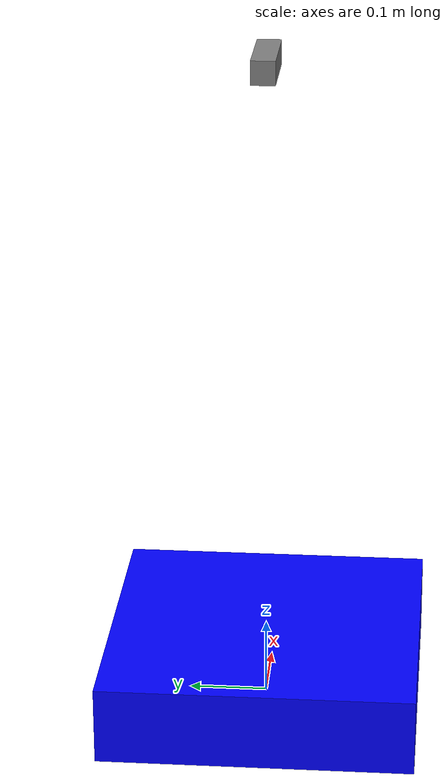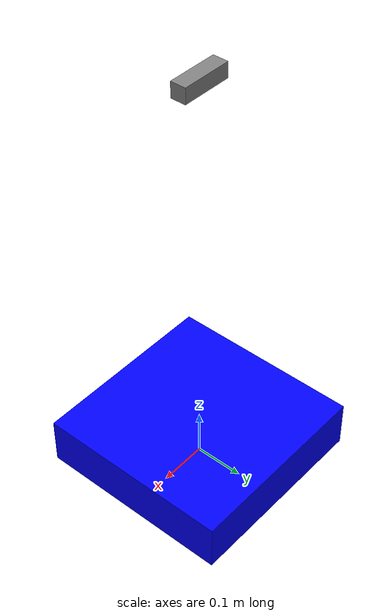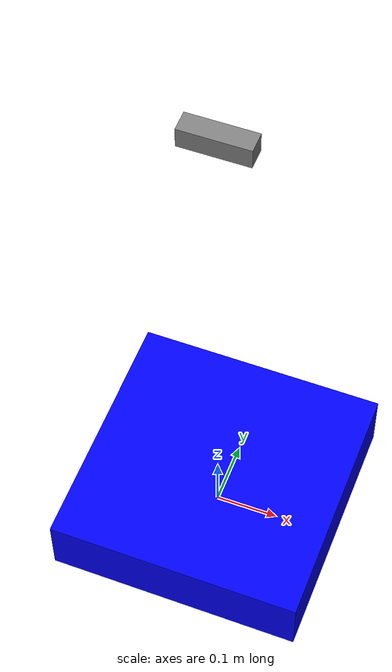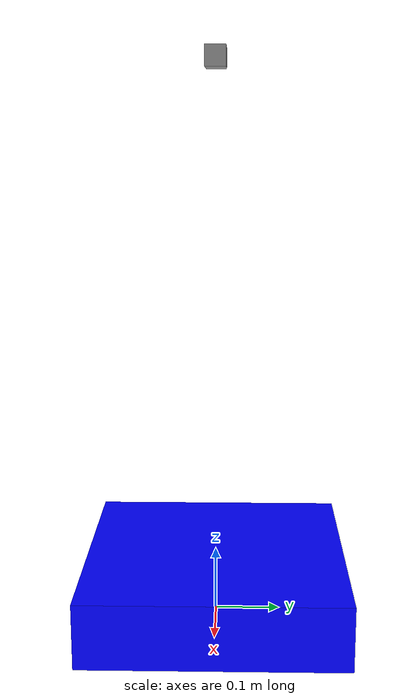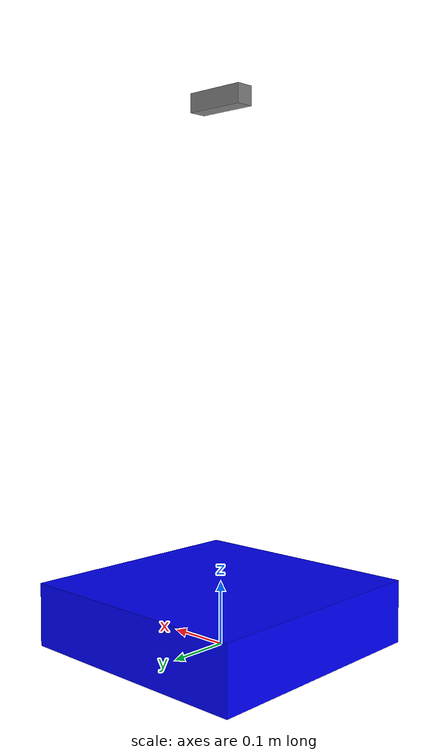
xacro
<?xml version="1.0"?>
<robot name="test_robot" xmlns:xacro="http://www.ros.org/wiki/xacro">

  <!-- ===================================================
       Robot Base Link Definition
       =================================================== -->
  <link name="base_link">
    <!-- Visual representation -->
    <visual>
      <geometry>
        <box size="0.4 0.4 0.1"/>
      </geometry>
      <origin xyz="0 0 0.05" rpy="0 0 0"/>
      <material name="blue">
        <color rgba="0 0 1 1"/>
      </material>
    </visual>

    <!-- Collision properties -->
    <collision>
      <geometry>
        <box size="0.4 0.4 0.1"/>
      </geometry>
      <origin xyz="0 0 0.05" rpy="0 0 0"/>
    </collision>

    <!-- Inertial properties -->
    <inertial>
      <mass value="5.0"/>
      <origin xyz="0 0 0.05" rpy="0 0 0"/>
      <inertia
        ixx="0.02" ixy="0.0" ixz="0.0"
        iyy="0.02" iyz="0.0"
        izz="0.02"/>
    </inertial>
  </link>

  <!-- ===================================================
       Camera Link Definition
       =================================================== -->
  <link name="depthcam_link">
    <!-- Visual representation -->
    <visual>
      <geometry>
        <box size="0.1 0.03 0.03"/>
      </geometry>
      <origin xyz="0 0 0" rpy="0 0 0"/>
      <material name="gray">
        <color rgba="0.5 0.5 0.5 1"/>
      </material>
    </visual>

    <!-- Collision properties -->
    <collision>
      <geometry>
        <box size="0.1 0.03 0.03"/>
      </geometry>
      <origin xyz="0 0 0" rpy="0 0 0"/>
    </collision>

    <!-- Inertial properties -->
    <inertial>
      <mass value="0.1"/>
      <origin xyz="0 0 0" rpy="0 0 0"/>
      <inertia
        ixx="0.0001" ixy="0.0" ixz="0.0"
        iyy="0.0001" iyz="0.0"
        izz="0.0001"/>
    </inertial>
  </link>

  <!-- ===================================================
       Joint Connecting Camera to Robot Base Link
       =================================================== -->
  <joint name="camera_mount_joint" type="fixed">
    <parent link="base_link"/>
    <child link="depthcam_link"/>
    <origin xyz="0 0 0.85" rpy="0 0 0"/>
  </joint>

</robot>
